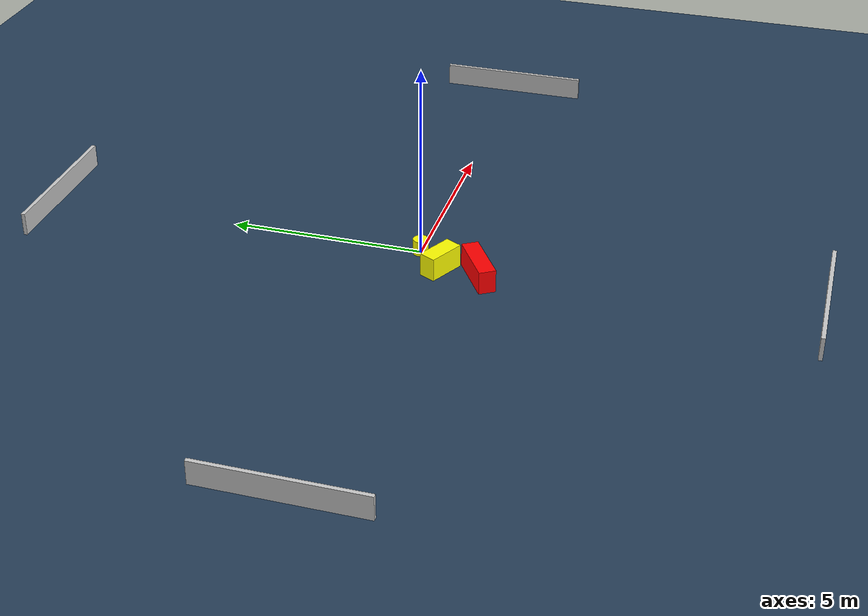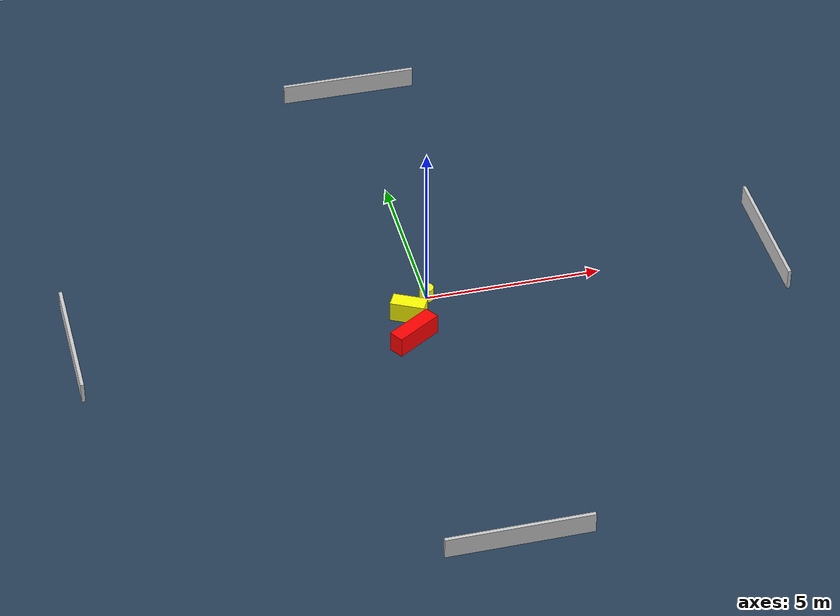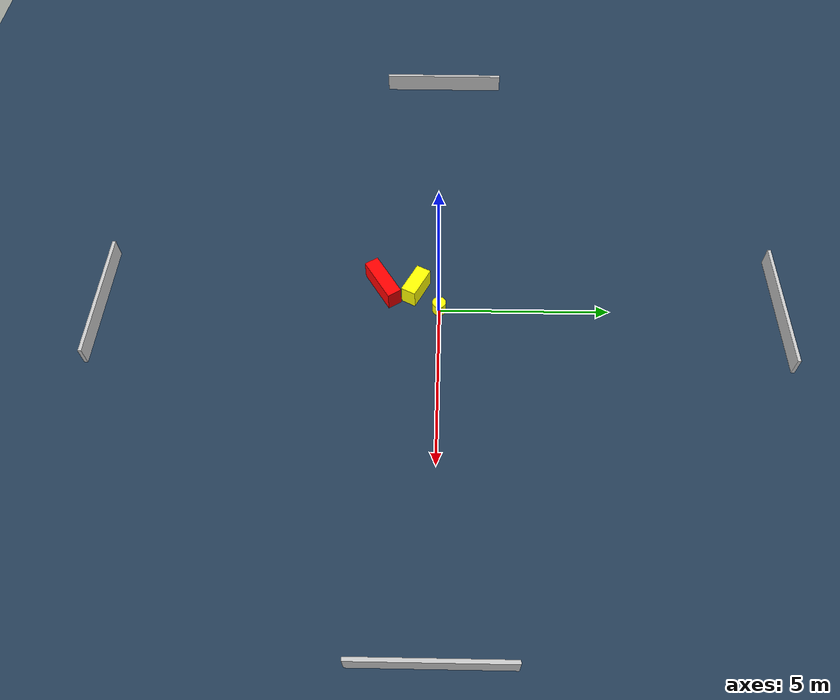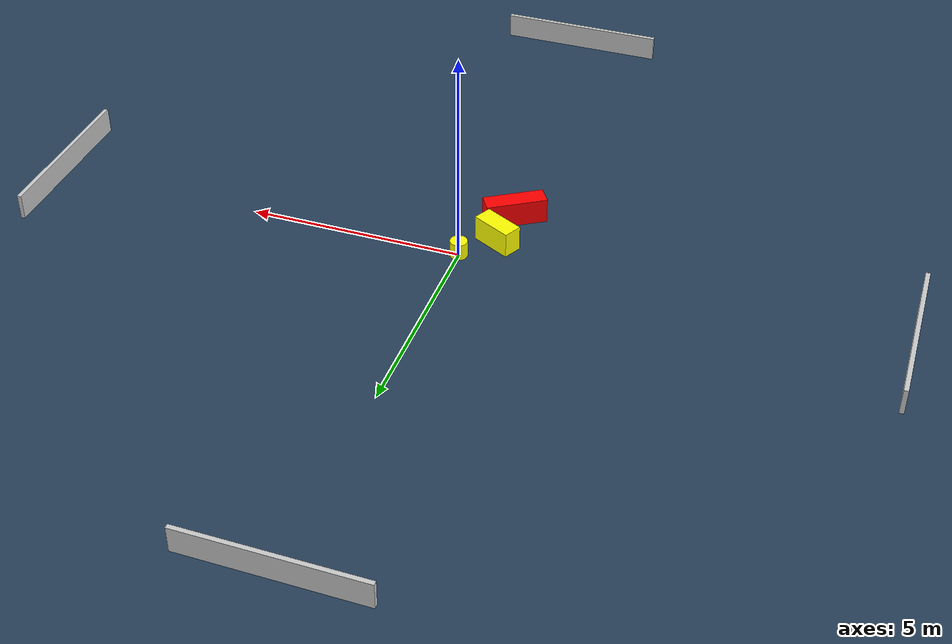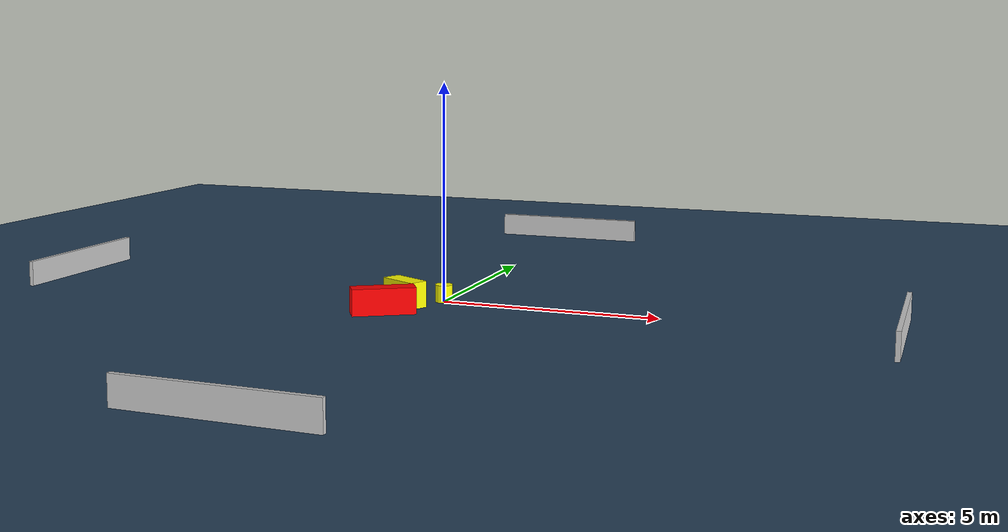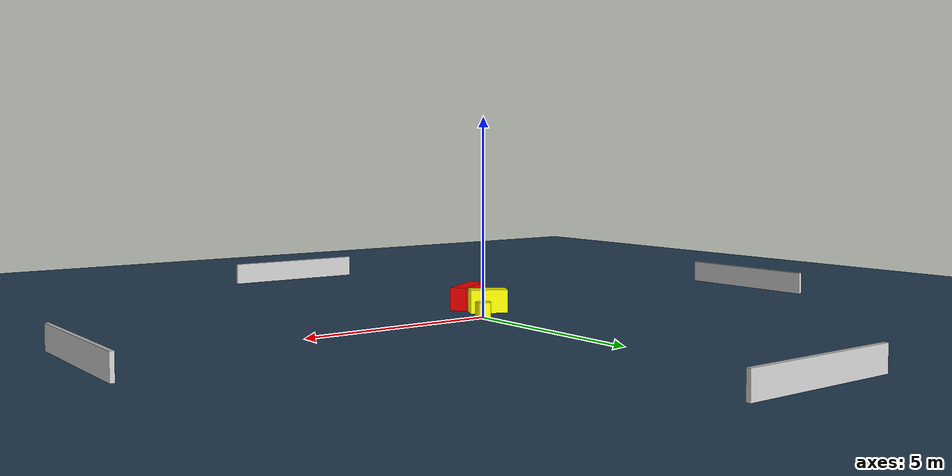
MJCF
<?xml version="1.0" ?>
<mujoco model="generated_environment">
  <option timestep="0.01" integrator="RK4" cone="elliptic"/>
  <default>
    <geom density="1"/>
  </default>
  <asset>
    <texture builtin="gradient" height="3072" name="skybox" rgb1="0.3 0.5 0.7" rgb2="0 0 0" type="skybox" width="512"/>
    <texture builtin="checker" height="300" name="groundplane" rgb1="0.2 0.3 0.4" rgb2="0.1 0.2 0.3" type="2d" width="300"/>
    <material name="groundplane" reflectance="0.2" texrepeat="5 5" texture="groundplane"/>
  </asset>
  <worldbody>
    <light dir="0 0 -1" directional="true" pos="0 0 1.5"/>
    <geom condim="3" friction="0.5 0.005 0.001" material="groundplane" name="floor" pos="0 0 0" size="0 0 0.05" type="plane"/>
    <body name="walls">
      <geom name="wall_1" condim="4" pos="-10.0 0.0 0.3" rgba="0.800000011920929 0.800000011920929 0.800000011920929 1.0" size="0.05 2.0 0.3" type="box"/>
      <geom name="wall_2" condim="4" pos="10.0 0.0 0.3" rgba="0.800000011920929 0.800000011920929 0.800000011920929 1.0" size="0.05 2.0 0.3" type="box"/>
      <geom name="wall_3" condim="4" pos="0.0 -10.0 0.3" rgba="0.800000011920929 0.800000011920929 0.800000011920929 1.0" size="2.0 0.05 0.3" type="box"/>
      <geom name="wall_4" condim="4" pos="0.0 10.0 0.3" rgba="0.800000011920929 0.800000011920929 0.800000011920929 1.0" size="2.0 0.05 0.3" type="box"/>
    </body>
    <body name="robot">
      <joint name="joint_x" type="slide" pos="0 0 0" axis="1 0 0"/>
      <joint name="joint_y" type="slide" pos="0 0 0" axis="0 1 0"/>
      <geom name="robot" type="cylinder" pos="0.0 0.0 0.2" size="0.2 0.2 0.0" mass="5.0" friction="1.0 0.005 0.0001" condim="4" rgba="1.0 1.0 0.0 1.0"/>
    </body>
    <body name="obstacle_1_movable">
      <geom name="obstacle_1_movable" condim="4" pos="-0.6752584212602099 -0.6985997767415019 0.3" euler="0 0 242.92288668853246" friction="0.0 0.005 0.001" rgba="1.0 1.0 0.0 1.0" size="0.22320198425073903 0.48823919451196474 0.3" type="box" mass="0.1"/>
      <joint type="free"/>
    </body>
    <body name="obstacle_2_static">
      <geom name="obstacle_2_static" condim="4" pos="-0.7693955698594594 -1.6905329070993014 0.3" euler="0 0 212.19085095700984" friction="0.0 0.005 0.001" rgba="1.0 0.0 0.0 1.0" size="0.7122601508802828 0.2167040919624597 0.3" type="box"/>
    </body>
  </worldbody>
  <actuator>
    <motor name="actuator_x" joint="joint_x" gear="1" ctrlrange="-1 1"/>
    <motor name="actuator_y" joint="joint_y" gear="1" ctrlrange="-1 1"/>
  </actuator>
</mujoco>
